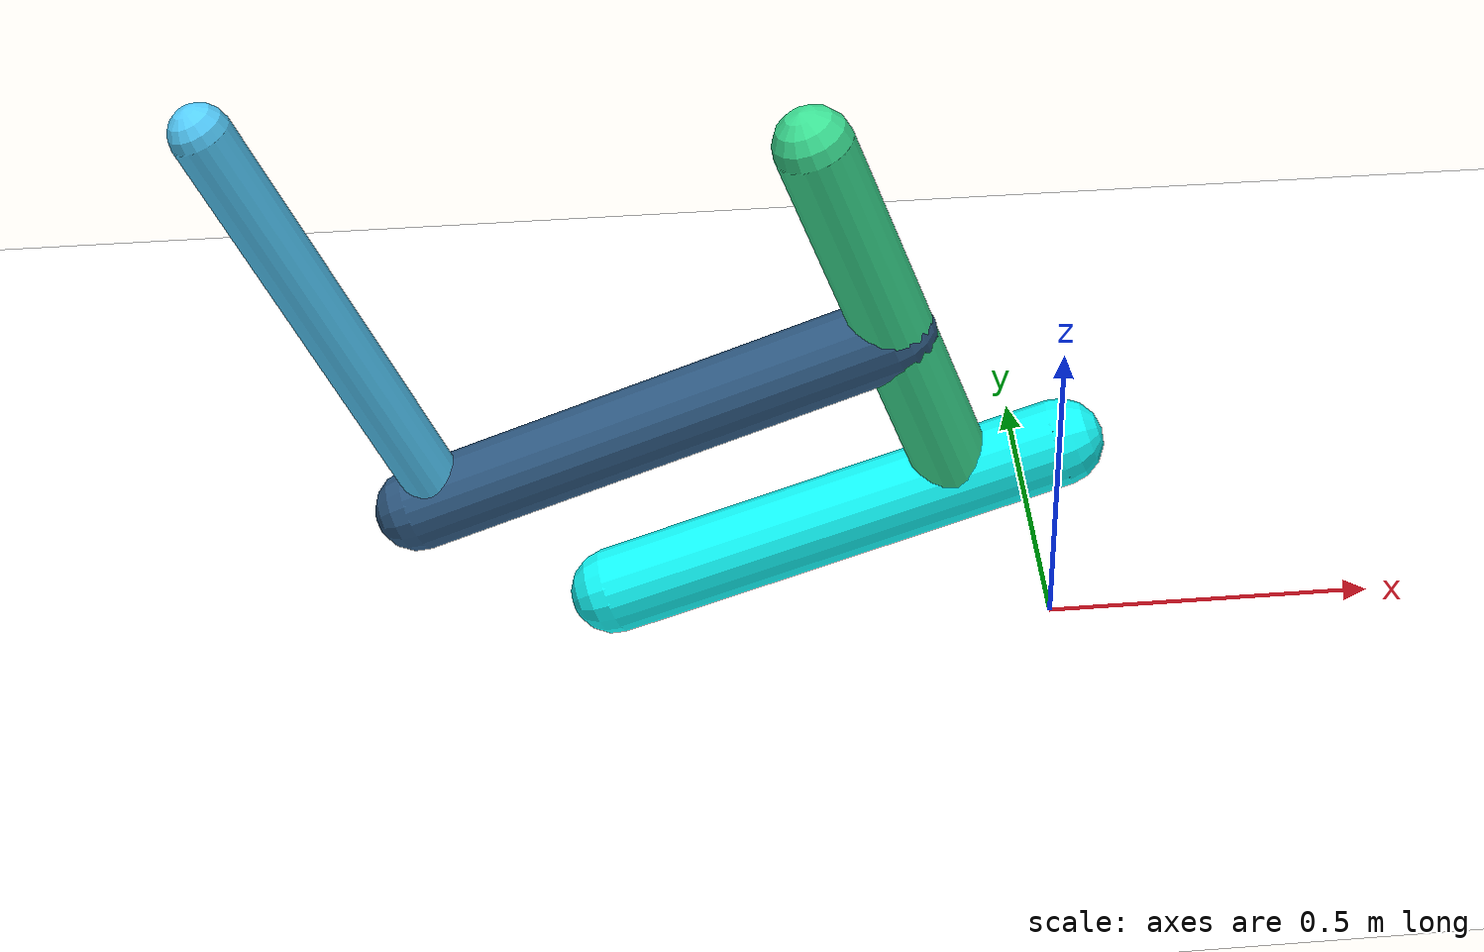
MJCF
<mujoco model="morphology">
  <option timestep="0.01"/>
  <default>
    <default class="/"/>
  </default>
  <asset>
    <texture name="texplane" type="2d" builtin="checker" rgb1="0.1 0.2 0.3" rgb2="0.2 0.3 0.4" width="300" height="300"/>
    <material name="MatPlane" class="/" texture="texplane" texrepeat="20 20" specular="1" shininess="1" reflectance="0.5"/>
  </asset>
  <worldbody>
    <light name="//unnamed_light_0" class="/" directional="true" pos="0 0 1.5" dir="0 0 -1.3" cutoff="1e+02" exponent="1" diffuse="1 1 1" specular="0.1 0.1 0.1"/>
    <geom name="ground" class="/" type="plane" size="15 15 0.5" material="MatPlane" rgba="1 1 1 1"/>
    <body name="body" pos="0 0 0.34">
      <geom name="geom0" class="/" type="capsule" contype="1" conaffinity="1" condim="3" size="0.065" rgba="0.073 0.99 0.99 1" friction="0.4 0.1 0.1" fromto="0 0 0 -0.67 0 -0.24"/>
      <body name="body1" pos="-0.15 0 -0.053">
        <geom name="geom1" class="/" type="capsule" contype="1" conaffinity="1" condim="3" size="0.058" rgba="0.23 0.88 0.58 1" friction="0.4 0.1 0.1" fromto="0 0 0 -0.21 0 0.6"/>
        <body name="body2" pos="-0.097 0 0.27">
          <geom name="geom2" class="/" type="capsule" contype="1" conaffinity="1" condim="3" size="0.062" rgba="0.18 0.35 0.51 1" friction="0.4 0.1 0.1" fromto="0 0 0 -0.7 0 -0.27"/>
          <body name="body3" pos="-0.66 0 -0.25">
            <geom name="geom3" class="/" type="capsule" contype="1" conaffinity="1" condim="3" size="0.043" rgba="0.33 0.81 1 1" friction="0.4 0.1 0.1" fromto="0 0 0 -0.26 0 0.65"/>
            <joint name="joint3" class="/" type="hinge" axis="0 1 0" limited="true" stiffness="20" range="-46 46" armature="0.1" damping="2"/>
          </body>
          <joint name="joint2" class="/" type="hinge" axis="0 1 0" limited="true" stiffness="20" range="-41 41" armature="0.1" damping="2"/>
        </body>
        <joint name="joint1" class="/" type="hinge" axis="0 1 0" limited="true" stiffness="20" range="-38 38" armature="0.1" damping="2"/>
      </body>
      <joint name="rootx" class="/" type="slide" axis="1 0 0" limited="false" stiffness="0" armature="0" damping="0"/>
      <joint name="rootz" class="/" type="slide" axis="0 0 1" limited="false" stiffness="0" armature="0" damping="0"/>
      <joint name="rooty" class="/" type="hinge" axis="0 1 0" limited="false" stiffness="0" armature="0" damping="0"/>
    </body>
  </worldbody>
  <actuator>
    <motor name="motor3" class="/" ctrllimited="true" ctrlrange="-1 1" gear="1.3e+02" joint="joint3"/>
    <motor name="motor2" class="/" ctrllimited="true" ctrlrange="-1 1" gear="1.8e+02" joint="joint2"/>
    <motor name="motor1" class="/" ctrllimited="true" ctrlrange="-1 1" gear="2e+02" joint="joint1"/>
  </actuator>
  <sensor>
    <subtreelinvel name="velocity" body="body"/>
  </sensor>
</mujoco>
